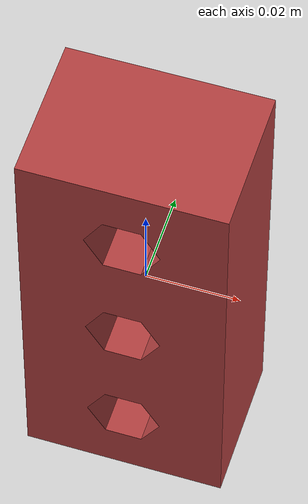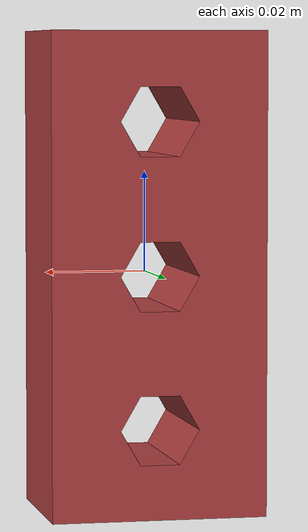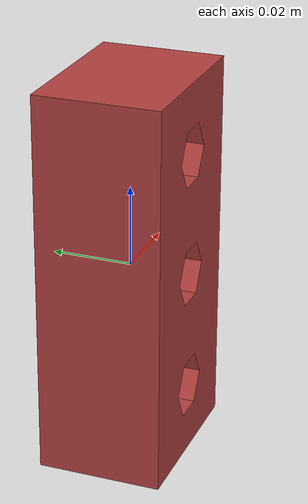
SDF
<?xml version="1.0" ?>
<sdf version='1.6'>
  <model name='Brick'>
    <link name='Brick'>
      <pose frame=''>0 0.0 0 0 -0 0</pose>
      <inertial>
        <pose frame=''>0 -0.0 0.03 0 -0 0</pose>
        <mass>0.001</mass>
        <inertia>
          <ixx>0.0</ixx>
          <ixy>0</ixy>
          <ixz>0</ixz>
          <iyy>0.0</iyy>
          <iyz>0</iyz>
          <izz>0.0</izz>
        </inertia>
      </inertial>
      <collision name='Brick_collision'>
        <pose frame=''>0 0 0 0 1.5708 0</pose>
        <geometry>
          <box>
            <size>0.096 0.031 0.043</size>
          </box>
        </geometry>
        <surface>
          <friction>
            <ode>
              <mu>100</mu>
              <mu2>50</mu2>
              <fdir1>0 0 1</fdir1>
              <slip1>0.0</slip1>
              <slip2>0.0</slip2>
            </ode>
          </friction>
          <contact>
            <ode>
              <kp>100000.000000</kp>
              <kd>10.00000</kd>
              <max_vel>2.000000</max_vel>
              <min_depth>0.0001</min_depth>
            </ode>
          </contact>
        </surface>
      </collision>
      <visual name='Brick_visual'>
        <pose frame=''>0 0 0 0 1.5708 0</pose>
        <geometry>
          <mesh>
            <scale>0.5 0.5 0.5</scale>
            <uri>model://Brick/meshes/Brick_1.STL</uri>
          </mesh>
        </geometry>
        <material>
          <ambient>0.698 0.25 0.25 1</ambient>
          <diffuse>0.698 0.25 0.25 1</diffuse>
          <specular>0.1 0.1 0.1 1</specular>
          <emissive>0 0 0 0</emissive>
        </material>
      </visual>
    </link>
  </model>
</sdf>
